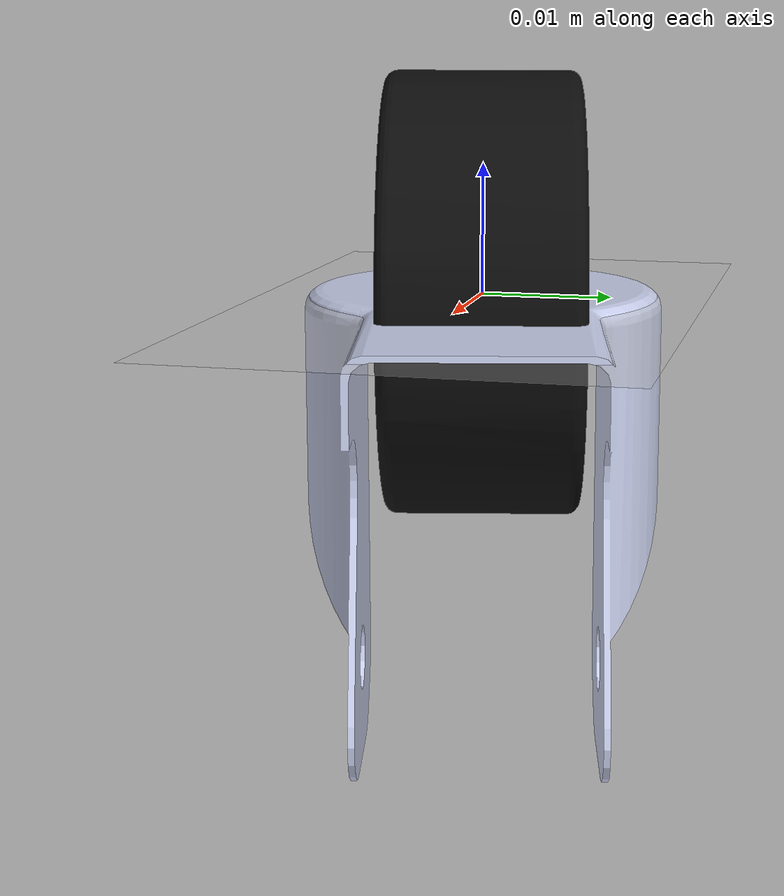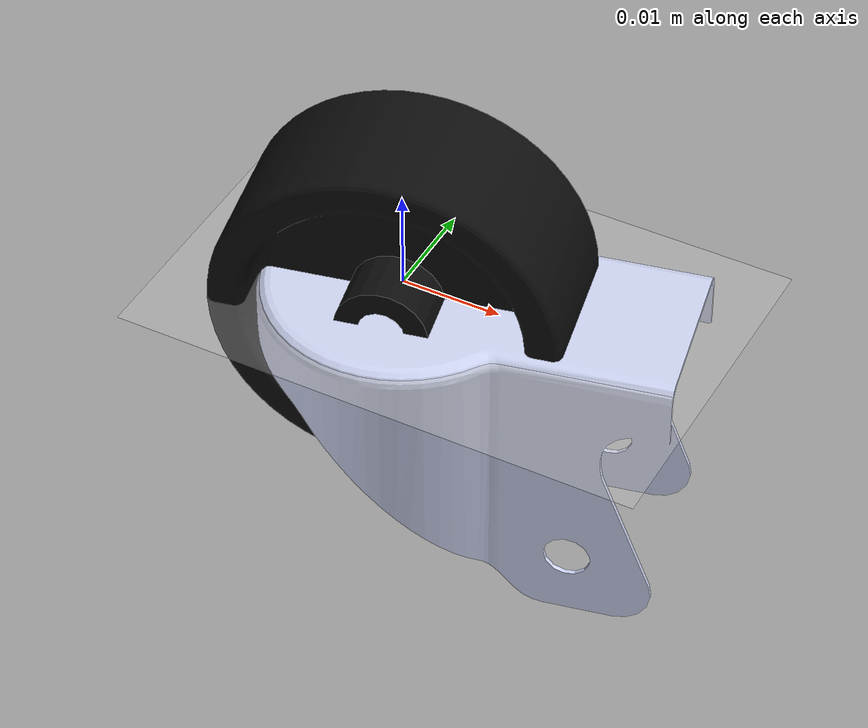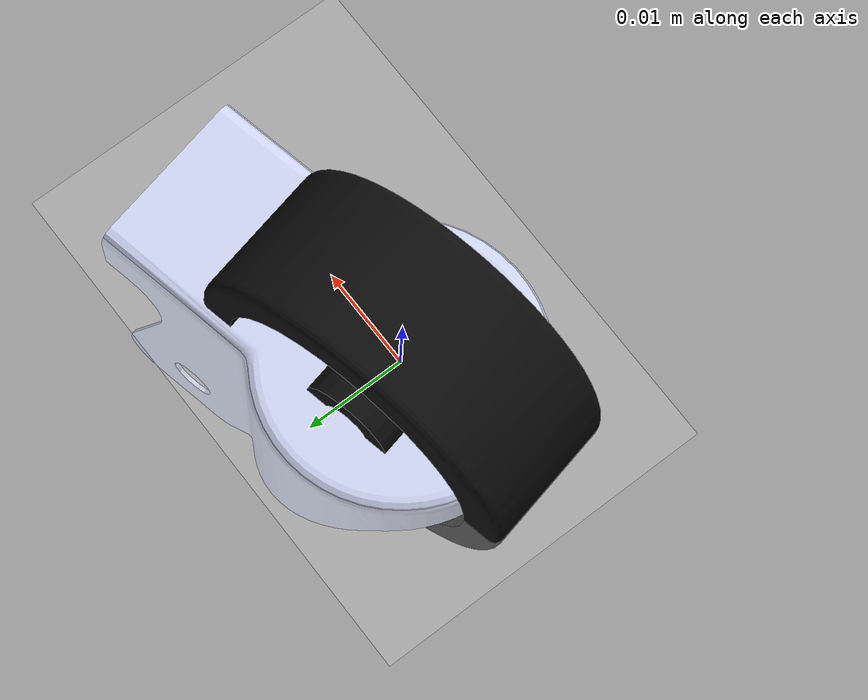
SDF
<?xml version="1.0"?>
<sdf version="1.6">
  <world name="boe_empty_world">

    <!-- Xuất pose thực của model và từng link để kiểm tra mô phỏng. -->
    <plugin name="gazebo_ros_state" filename="libgazebo_ros_state.so">
      <update_rate>30.0</update_rate>
    </plugin>

    <!-- Cập nhật hai mesh caster trực tiếp theo từng bước mô phỏng. -->
    <plugin
      name="boe_caster_visual_plugin"
      filename="libboe_caster_visual_plugin.so"/>

    <!-- Mặt đất -->
    <include>
      <uri>model://ground_plane</uri>
    </include>

    <!-- Ánh sáng mặt trời -->
    <include>
      <uri>model://sun</uri>
    </include>

    <model name="boe_caster_rotation_visual">
      <static>true</static>
      <link name="link">
        <visual name="visual">
          <geometry>
            <mesh>
              <uri>model://boe_robot_description/meshes/caster_rotation_link.STL</uri>
            </mesh>
          </geometry>
          <material>
            <ambient>0.796 0.824 0.937 1</ambient>
            <diffuse>0.796 0.824 0.937 1</diffuse>
          </material>
        </visual>
      </link>
    </model>

    <model name="boe_caster_wheel_visual">
      <static>true</static>
      <link name="link">
        <visual name="visual">
          <pose>0 0 0 -1.5707963268 0 0</pose>
          <geometry>
            <mesh>
              <uri>model://boe_robot_description/meshes/caster_wheel_link.STL</uri>
            </mesh>
          </geometry>
          <material>
            <ambient>0.05 0.05 0.05 1</ambient>
            <diffuse>0.05 0.05 0.05 1</diffuse>
          </material>
        </visual>
      </link>
    </model>

    <!-- Trọng lực -->
    <gravity>0 0 -9.81</gravity>

    <!-- Cấu hình bộ mô phỏng vật lý ODE -->
    <physics name="ode_physics" type="ode">
      <max_step_size>0.001</max_step_size>
      <real_time_factor>1.0</real_time_factor>
      <real_time_update_rate>1000.0</real_time_update_rate>
      <ode>
        <solver>
          <!-- Solver trực tiếp ổn định hơn cho robot nhỏ có ba điểm tỳ. -->
          <type>world</type>
          <iters>100</iters>
          <sor>1.3</sor>
        </solver>
        <constraints>
          <cfm>0.00001</cfm>
          <erp>0.2</erp>
          <contact_max_correcting_vel>1.0</contact_max_correcting_vel>
          <contact_surface_layer>0.0001</contact_surface_layer>
        </constraints>
      </ode>
    </physics>

    <!-- Góc nhìn mặc định -->
    <gui fullscreen="0">
      <camera name="user_camera">
        <pose>0.6 -0.6 0.45 0 0.45 2.35</pose>
        <view_controller>orbit</view_controller>
      </camera>
    </gui>

  </world>
</sdf>
